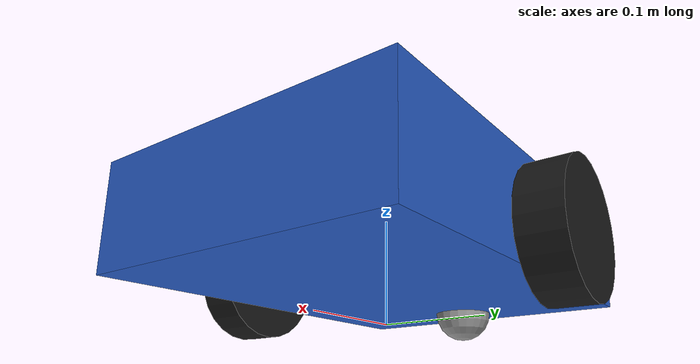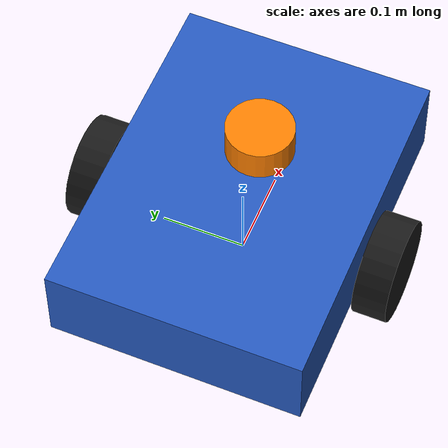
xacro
<?xml version="1.0"?>
<robot name="pushbot" xmlns:xacro="http://www.ros.org/wiki/xacro">

  <xacro:include filename="$(find pushbot_description)/urdf/inertial_macros.xacro"/>

  <!-- ===================== Parameters ===================== -->
  <!-- Change these and the whole robot updates. -->
  <xacro:property name="chassis_length" value="0.40"/>
  <xacro:property name="chassis_width"  value="0.30"/>
  <xacro:property name="chassis_height" value="0.10"/>
  <xacro:property name="chassis_mass"   value="3.0"/>
  <xacro:property name="ground_clearance" value="0.03"/>

  <xacro:property name="wheel_radius" value="0.06"/>
  <xacro:property name="wheel_width"  value="0.04"/>
  <xacro:property name="wheel_mass"   value="0.3"/>
  <!-- Distance between the wheel centres (left to right) -->
  <xacro:property name="wheel_separation" value="${chassis_width + wheel_width + 0.01}"/>

  <!-- Sized so the caster touches the ground at the same level as the wheels -->
  <xacro:property name="caster_radius" value="${wheel_radius - ground_clearance}"/>
  <xacro:property name="caster_mass"   value="0.1"/>
  <xacro:property name="caster_x"      value="${-chassis_length / 2.0 + caster_radius + 0.02}"/>

  <xacro:property name="lidar_radius" value="0.04"/>
  <xacro:property name="lidar_height" value="0.04"/>
  <xacro:property name="lidar_mass"   value="0.15"/>

  <!-- Chassis centre height, measured from base_link (the wheel axle) -->
  <xacro:property name="chassis_z" value="${ground_clearance - wheel_radius + chassis_height / 2.0}"/>

  <!-- ===================== Materials (RViz colours) ===================== -->
  <material name="blue">  <color rgba="0.15 0.35 0.75 1.0"/></material>
  <material name="black"> <color rgba="0.1 0.1 0.1 1.0"/></material>
  <material name="grey">  <color rgba="0.6 0.6 0.6 1.0"/></material>
  <material name="orange"><color rgba="1.0 0.5 0.0 1.0"/></material>

  <!-- ===================== base_footprint and base_link ===================== -->
  <link name="base_footprint"/>

  <link name="base_link"/>

  <joint name="base_joint" type="fixed">
    <parent link="base_footprint"/>
    <child link="base_link"/>
    <origin xyz="0 0 ${wheel_radius}" rpy="0 0 0"/>
  </joint>

  <!-- ===================== Chassis ===================== -->
  <link name="chassis_link">
    <visual>
      <geometry><box size="${chassis_length} ${chassis_width} ${chassis_height}"/></geometry>
      <material name="blue"/>
    </visual>
    <collision>
      <geometry><box size="${chassis_length} ${chassis_width} ${chassis_height}"/></geometry>
    </collision>
    <xacro:inertial_box mass="${chassis_mass}" x="${chassis_length}" y="${chassis_width}" z="${chassis_height}">
      <origin xyz="0 0 0" rpy="0 0 0"/>
    </xacro:inertial_box>
  </link>

  <joint name="chassis_joint" type="fixed">
    <parent link="base_link"/>
    <child link="chassis_link"/>
    <origin xyz="0 0 ${chassis_z}" rpy="0 0 0"/>
  </joint>

  <!-- ===================== Drive wheels ===================== -->
  <!-- A macro so the left and right wheels share one definition.
       side: "left" or "right"; reflect: +1 for left, -1 for right -->
  <xacro:macro name="wheel" params="side reflect">
    <link name="${side}_wheel_link">
      <visual>
        <!-- Cylinders point along z by default; roll by 90 degrees so the axis lies along y -->
        <origin xyz="0 0 0" rpy="${-pi/2} 0 0"/>
        <geometry><cylinder radius="${wheel_radius}" length="${wheel_width}"/></geometry>
        <material name="black"/>
      </visual>
      <collision>
        <origin xyz="0 0 0" rpy="${-pi/2} 0 0"/>
        <geometry><cylinder radius="${wheel_radius}" length="${wheel_width}"/></geometry>
      </collision>
      <xacro:inertial_cylinder mass="${wheel_mass}" length="${wheel_width}" radius="${wheel_radius}">
        <origin xyz="0 0 0" rpy="${-pi/2} 0 0"/>
      </xacro:inertial_cylinder>
    </link>

    <joint name="${side}_wheel_joint" type="continuous">
      <parent link="base_link"/>
      <child link="${side}_wheel_link"/>
      <origin xyz="0 ${reflect * wheel_separation / 2.0} 0" rpy="0 0 0"/>
      <!-- Positive rotation about +y drives the robot forward -->
      <axis xyz="0 1 0"/>
    </joint>

    <gazebo reference="${side}_wheel_link">
      <mu1>1.0</mu1>
      <mu2>1.0</mu2>
    </gazebo>
  </xacro:macro>

  <xacro:wheel side="left"  reflect="1"/>
  <xacro:wheel side="right" reflect="-1"/>

  <!-- ===================== Caster (rear support) ===================== -->
  <!-- A frictionless sphere: simpler and more stable in simulation than a swivelling caster -->
  <link name="caster_link">
    <visual>
      <geometry><sphere radius="${caster_radius}"/></geometry>
      <material name="grey"/>
    </visual>
    <collision>
      <geometry><sphere radius="${caster_radius}"/></geometry>
    </collision>
    <xacro:inertial_sphere mass="${caster_mass}" radius="${caster_radius}">
      <origin xyz="0 0 0" rpy="0 0 0"/>
    </xacro:inertial_sphere>
  </link>

  <joint name="caster_joint" type="fixed">
    <parent link="base_link"/>
    <child link="caster_link"/>
    <origin xyz="${caster_x} 0 ${caster_radius - wheel_radius}" rpy="0 0 0"/>
  </joint>

  <gazebo reference="caster_link">
    <mu1>0.0</mu1>
    <mu2>0.0</mu2>
  </gazebo>

  <!-- ===================== 2D LiDAR ===================== -->
  <link name="lidar_link">
    <visual>
      <geometry><cylinder radius="${lidar_radius}" length="${lidar_height}"/></geometry>
      <material name="orange"/>
    </visual>
    <collision>
      <geometry><cylinder radius="${lidar_radius}" length="${lidar_height}"/></geometry>
    </collision>
    <xacro:inertial_cylinder mass="${lidar_mass}" length="${lidar_height}" radius="${lidar_radius}">
      <origin xyz="0 0 0" rpy="0 0 0"/>
    </xacro:inertial_cylinder>
  </link>

  <joint name="lidar_joint" type="fixed">
    <parent link="chassis_link"/>
    <child link="lidar_link"/>
    <origin xyz="0.05 0 ${chassis_height / 2.0 + lidar_height / 2.0}" rpy="0 0 0"/>
  </joint>

  <!-- Simulation parts: ros2_control hardware, Gazebo plugin, LiDAR sensor -->
  <xacro:include filename="$(find pushbot_description)/urdf/pushbot.gazebo.xacro"/>

</robot>

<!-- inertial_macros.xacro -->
<robot xmlns:xacro="http://www.ros.org/wiki/xacro">

  <!-- Solid box: x, y, z are the full side lengths -->
  <xacro:macro name="inertial_box" params="mass x y z *origin">
    <inertial>
      <xacro:insert_block name="origin"/>
      <mass value="${mass}"/>
      <inertia ixx="${mass * (y*y + z*z) / 12.0}" ixy="0.0" ixz="0.0"
               iyy="${mass * (x*x + z*z) / 12.0}" iyz="0.0"
               izz="${mass * (x*x + y*y) / 12.0}"/>
    </inertial>
  </xacro:macro>

  <!-- Solid cylinder with its axis along local z -->
  <xacro:macro name="inertial_cylinder" params="mass length radius *origin">
    <inertial>
      <xacro:insert_block name="origin"/>
      <mass value="${mass}"/>
      <inertia ixx="${mass * (3*radius*radius + length*length) / 12.0}" ixy="0.0" ixz="0.0"
               iyy="${mass * (3*radius*radius + length*length) / 12.0}" iyz="0.0"
               izz="${mass * radius*radius / 2.0}"/>
    </inertial>
  </xacro:macro>

  <!-- Solid sphere -->
  <xacro:macro name="inertial_sphere" params="mass radius *origin">
    <inertial>
      <xacro:insert_block name="origin"/>
      <mass value="${mass}"/>
      <inertia ixx="${2.0 * mass * radius*radius / 5.0}" ixy="0.0" ixz="0.0"
               iyy="${2.0 * mass * radius*radius / 5.0}" iyz="0.0"
               izz="${2.0 * mass * radius*radius / 5.0}"/>
    </inertial>
  </xacro:macro>

</robot>
